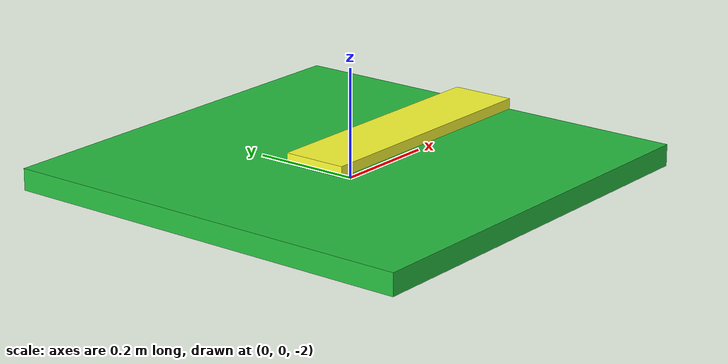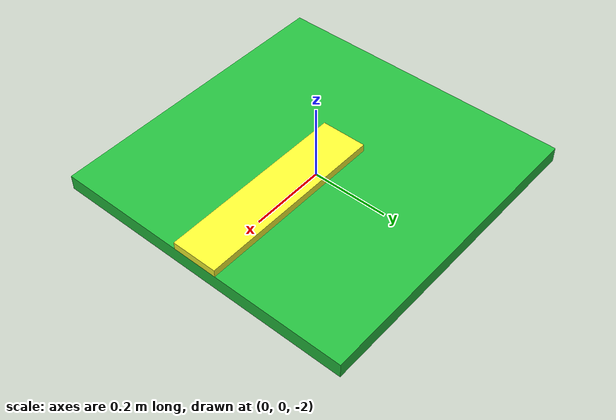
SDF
<?xml version="1.0"?>
<sdf version="1.9">
  <model name="marv_path_marker">
    <static>true</static>
    <link name="link">
      <visual name="tile">
        <pose>0 0 -1.98 0 0 0</pose>
        <geometry>
          <box>
            <size>0.8 0.8 0.04</size>
          </box>
        </geometry>
        <material>
          <ambient>0.1 0.55 0.2 1</ambient>
          <diffuse>0.15 0.75 0.25 1</diffuse>
        </material>
      </visual>
      <visual name="arrow">
        <pose>0.15 0 -1.95 0 0 0</pose>
        <geometry>
          <box>
            <size>0.5 0.12 0.02</size>
          </box>
        </geometry>
        <material>
          <ambient>0.9 0.9 0.1 1</ambient>
          <diffuse>1 1 0.2 1</diffuse>
        </material>
      </visual>
    </link>
  </model>
</sdf>
